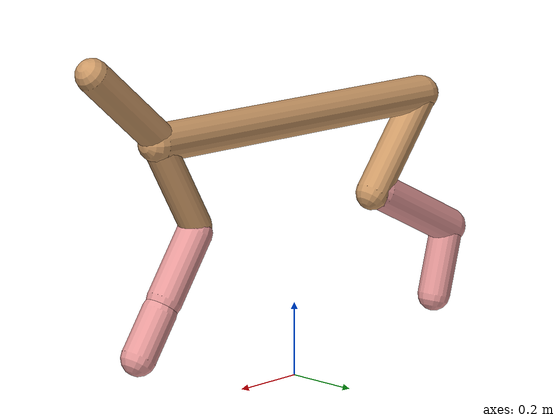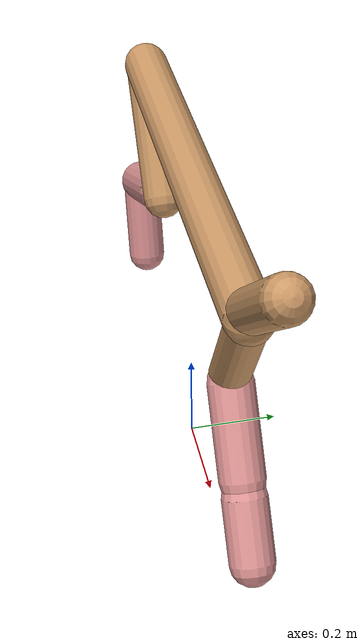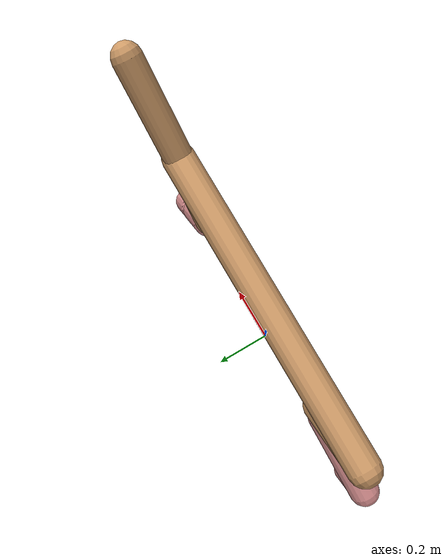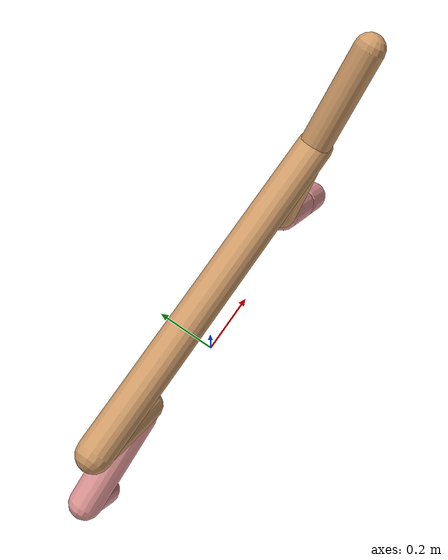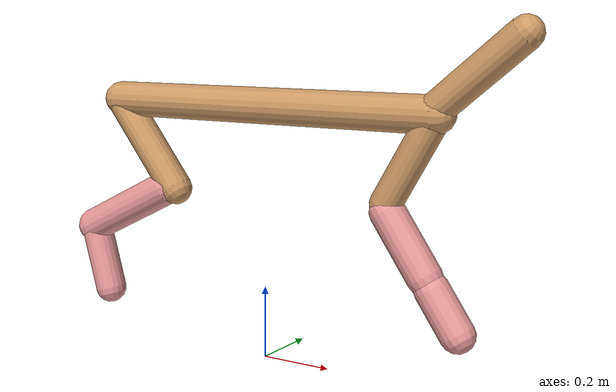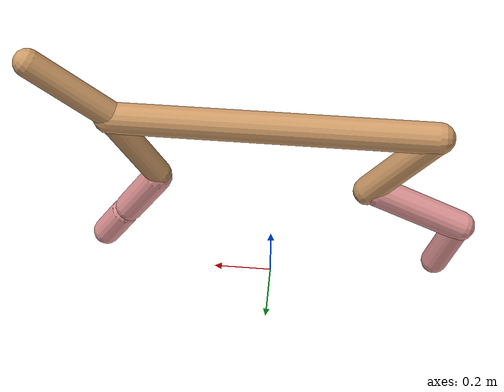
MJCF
<?xml version="1.0" encoding="utf-8"?>
<mujoco model="cheetah">
	<compiler angle="radian" coordinate="local" inertiafromgeom="true" settotalmass="14"></compiler>
	<default>
		<joint armature=".1" damping="0.010757135366172451" limited="true" solimplimit="0 .8 .03" solreflimit=".02 1" stiffness="8.165268024854846"></joint>
		<geom conaffinity="0" condim="3" contype="1" friction="0.7943187802965519 0.10991784943575283 0.10382010464547352" rgba="0.8 0.6 .4 1" solimp="0.0 0.8 0.01" solref="0.02 1"></geom>
		<motor ctrllimited="true" ctrlrange="-1 1"></motor>
	</default>
	<size nstack="300000" nuser_geom="1"></size>
	<option gravity="0 0 -9.81" timestep="0.01"></option>
	<worldbody>
		<body name="torso" pos="0 0 .7">
			<joint armature="0" axis="1 0 0" damping="0.0" limited="false" name="ignorex" pos="0 0 0" stiffness="0.0" type="slide"></joint>
			<joint armature="0" axis="0 0 1" damping="0.0" limited="false" name="ignorez" pos="0 0 0" stiffness="0.0" type="slide"></joint>
			<joint armature="0" axis="0 1 0" damping="0.0" limited="false" name="ignorey" pos="0 0 0" stiffness="0.0" type="hinge"></joint>
			<geom fromto="-.5 0 0 .5 0 0" name="torso" size="0.049525581792336744" type="capsule"></geom>
			<geom axisangle="0 1 0 .87" name="head" pos=".6 0 .1" size="0.04373726419963575 0.15376245640529815" type="capsule"></geom>
			<body name="bthigh" pos="-.5 0 0">
				<joint axis="0 1 0" damping="5.419141408493461" name="bthigh" pos="0 0 0" range="-.52 1.05" stiffness="259.9166847011527" type="hinge"></joint>
				<geom axisangle="0 1 0 -3.8" name="bthigh" pos=".1 0 -.13" size="0.04635015933292156 0.15202284351923545" type="capsule"></geom>
				<body name="bshin" pos=".16 0 -.25">
					<joint axis="0 1 0" damping="4.398021971754148" name="bshin" pos="0 0 0" range="-.785 .785" stiffness="186.34457300217386" type="hinge"></joint>
					<geom axisangle="0 1 0 -2.03" name="bshin" pos="-.14 0 -.07" rgba="0.9 0.6 0.6 1" size="0.0494415670973845 0.15868007184261748" type="capsule"></geom>
					<body name="bfoot" pos="-.28 0 -.14">
						<joint axis="0 1 0" damping="2.729860400012541" name="bfoot" pos="0 0 0" range="-.4 .785" stiffness="125.22001254580289" type="hinge"></joint>
						<geom axisangle="0 1 0 -.27" name="bfoot" pos=".03 0 -.097" rgba="0.9 0.6 0.6 1" size="0.04521192796839543 0.09472582582169155" type="capsule"></geom>
						<inertial mass="10"></inertial>
					</body>
				</body>
			</body>
			<body name="fthigh" pos=".5 0 0">
				<joint axis="0 1 0" damping="4.8844167829418135" name="fthigh" pos="0 0 0" range="-1.5 0.8" stiffness="184.74929782022198" type="hinge"></joint>
				<geom axisangle="0 1 0 .52" name="fthigh" pos="-.07 0 -.12" size="0.04185263924654363 0.13053003205205294" type="capsule"></geom>
				<body name="fshin" pos="-.14 0 -.24">
					<joint axis="0 1 0" damping="3.254100693709022" name="fshin" pos="0 0 0" range="-1.2 1.1" stiffness="111.02554226938055" type="hinge"></joint>
					<geom axisangle="0 1 0 -.6" name="fshin" pos=".065 0 -.09" rgba="0.9 0.6 0.6 1" size="0.04739283429905199 0.09624547290163382" type="capsule"></geom>
					<body name="ffoot" pos=".13 0 -.18">
						<joint axis="0 1 0" damping="1.402620576410068" name="ffoot" pos="0 0 0" range="-3.1 -0.3" stiffness="56.10187880422282" type="hinge"></joint>
						<geom axisangle="0 1 0 -.6" name="ffoot" pos=".045 0 -.07" rgba="0.9 0.6 0.6 1" size="0.04668708919608999 0.06529226085941982" type="capsule"></geom>
						<inertial mass="10"></inertial>
					</body>
				</body>
			</body>
		</body>
	</worldbody>
	<actuator>
		<motor gear="120" joint="bthigh" name="bthigh"></motor>
		<motor gear="90" joint="bshin" name="bshin"></motor>
		<motor gear="60" joint="bfoot" name="bfoot"></motor>
		<motor gear="120" joint="fthigh" name="fthigh"></motor>
		<motor gear="60" joint="fshin" name="fshin"></motor>
		<motor gear="30" joint="ffoot" name="ffoot"></motor>
	</actuator>
</mujoco>
